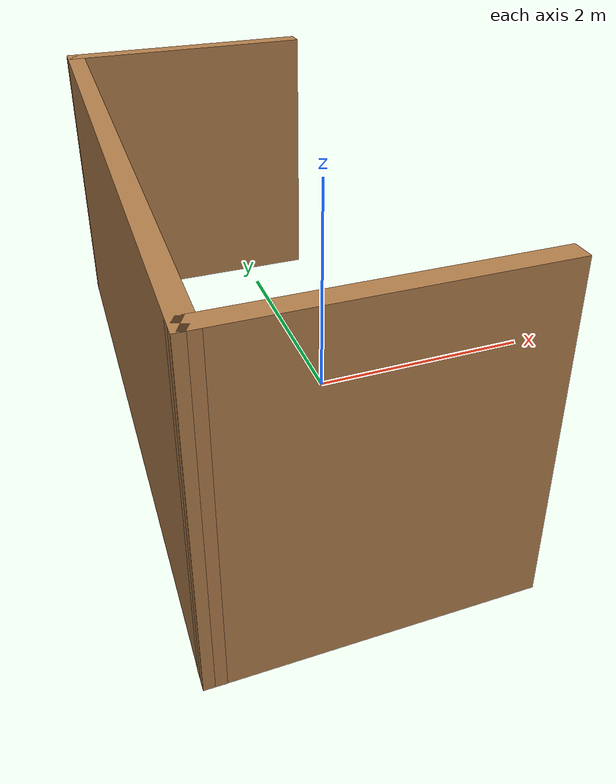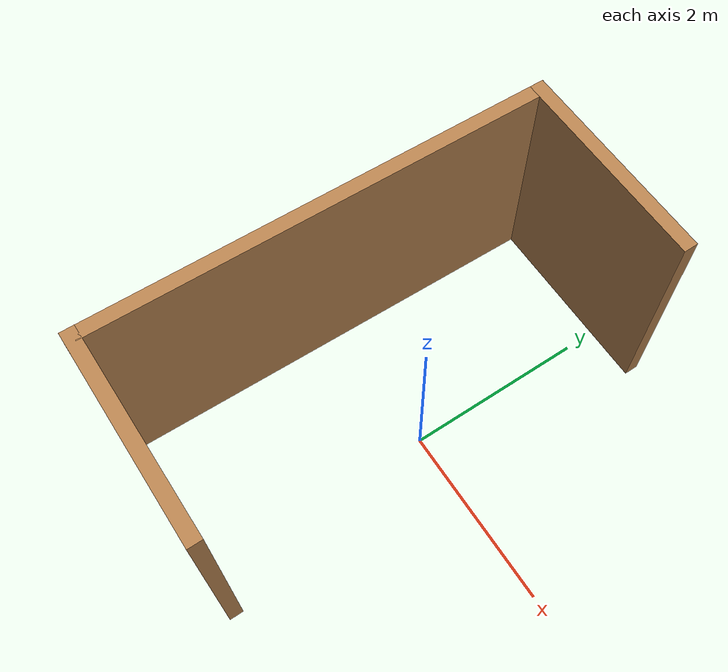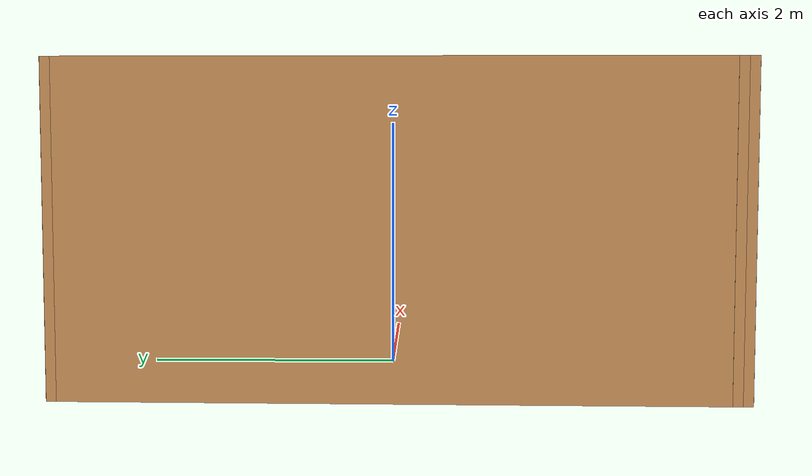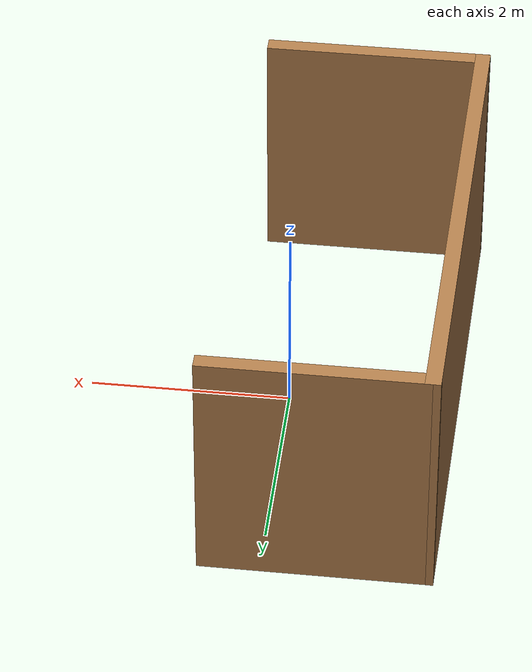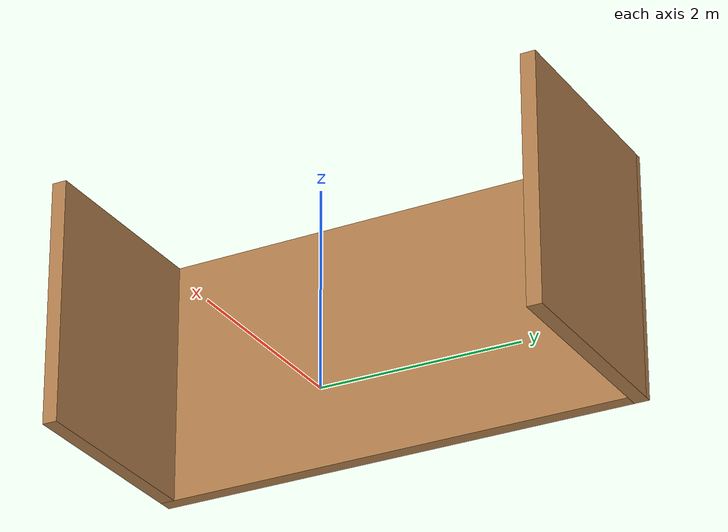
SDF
<?xml version='1.0'?>
<sdf version='1.7'>
  <model name='pick_and_place'>
    <pose>-0.563199 -0.06747 0 0 -0 0</pose>
    <link name='Wall_6'>
      <collision name='Wall_6_Collision'>
        <geometry>
          <box>
            <size>2.25 0.15 2.5</size>
          </box>
        </geometry>
        <pose>0 0 1.25 0 -0 0</pose>
      </collision>
      <visual name='Wall_6_Visual'>
        <pose>0 0 1.25 0 -0 0</pose>
        <geometry>
          <box>
            <size>2.25 0.15 2.5</size>
          </box>
        </geometry>
        <material>
          <script>
            <uri>file://media/materials/scripts/gazebo.material</uri>
            <name>Gazebo/Wood</name>
          </script>
          <ambient>1 1 1 1</ambient>
        </material>
        <meta>
          <layer>0</layer>
        </meta>
      </visual>
      <pose>-0.039436 -2.47911 0 0 -0 3.14159</pose>
    </link>
    <link name='Wall_8'>
      <collision name='Wall_8_Collision'>
        <geometry>
          <box>
            <size>5.10887 0.15 2.5</size>
          </box>
        </geometry>
        <pose>0 0 1.25 0 -0 0</pose>
      </collision>
      <visual name='Wall_8_Visual'>
        <pose>0 0 1.25 0 -0 0</pose>
        <geometry>
          <box>
            <size>5.10887 0.15 2.5</size>
          </box>
        </geometry>
        <material>
          <script>
            <uri>file://media/materials/scripts/gazebo.material</uri>
            <name>Gazebo/Wood</name>
          </script>
          <ambient>1 1 1 1</ambient>
        </material>
        <meta>
          <layer>0</layer>
        </meta>
      </visual>
      <pose>-1.0494 -0 0 0 -0 1.55465</pose>
    </link>
    <link name='Wall_9'>
      <collision name='Wall_9_Collision'>
        <geometry>
          <box>
            <size>2.25 0.15 2.5</size>
          </box>
        </geometry>
        <pose>0 0 1.25 0 -0 0</pose>
      </collision>
      <visual name='Wall_9_Visual'>
        <pose>0 0 1.25 0 -0 0</pose>
        <geometry>
          <box>
            <size>2.25 0.15 2.5</size>
          </box>
        </geometry>
        <material>
          <script>
            <uri>file://media/materials/scripts/gazebo.material</uri>
            <name>Gazebo/Wood</name>
          </script>
          <ambient>1 1 1 1</ambient>
        </material>
        <meta>
          <layer>0</layer>
        </meta>
      </visual>
      <pose>0.040638 2.47911 0 0 -0 0</pose>
    </link>
    <static>1</static>
  </model>
</sdf>
